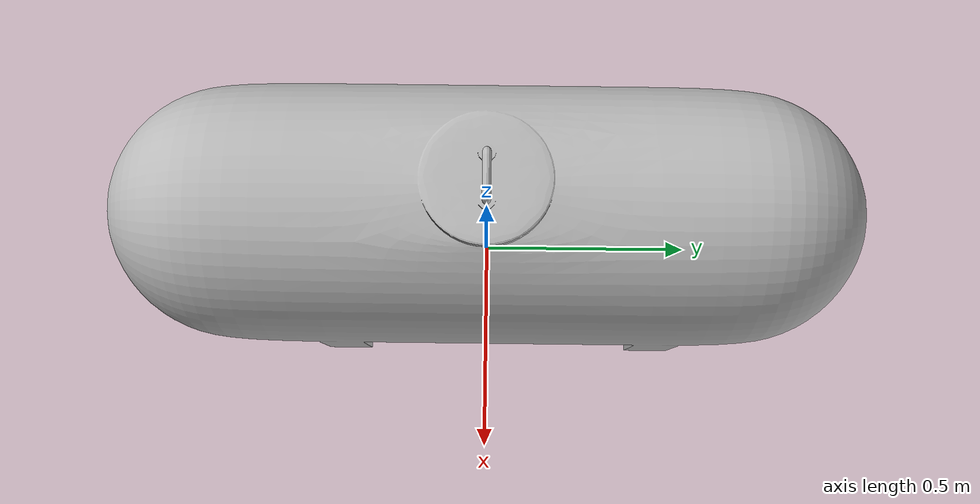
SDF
<?xml version="1.0" ?>
<sdf version='1.4'>
  <model name="gas_tank">
      <static>1</static>
      <link name='link'>
        <visual name='visual'>
          <geometry>
            <mesh>
              <uri>model://gas_tank/meshes/gas_tank.dae</uri>
              <scale>0.4 0.4 0.4</scale>
            </mesh>
          </geometry>
        </visual>
        <collision name='collision'>
          <laser_retro>0</laser_retro>
          <max_contacts>10</max_contacts>
          <pose frame=''>0 0 0 0 -0 0</pose>
          <geometry>
            <mesh>
              <uri>model://gas_tank/meshes/gas_tank.dae</uri>
              <scale>0.4 0.4 0.4</scale>
            </mesh>
          </geometry>
       </collision>

        <velocity_decay>
          <linear>0.000000</linear>
          <angular>0.000000</angular>
        </velocity_decay>
        <self_collide>0</self_collide>
        <kinematic>0</kinematic>
        <gravity>1</gravity>
      </link>
  </model>
</sdf>
